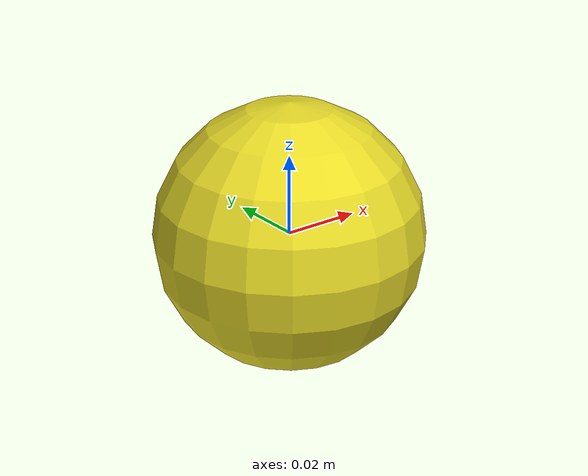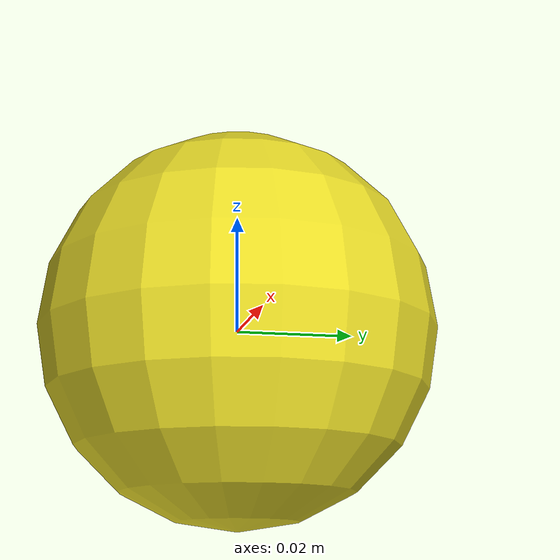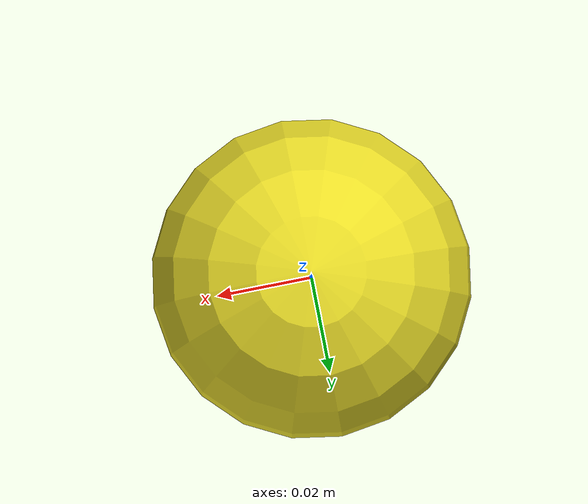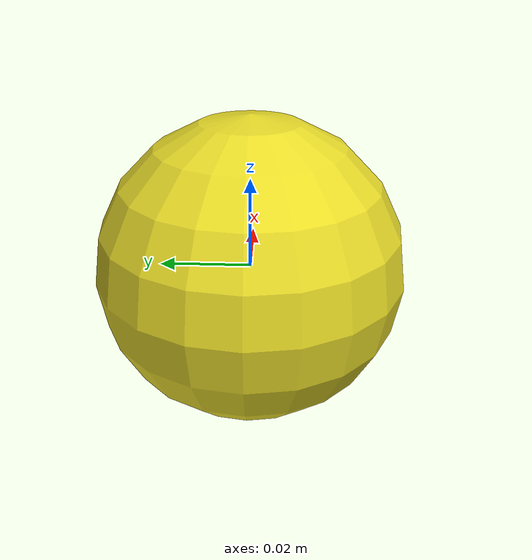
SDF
<?xml version="1.0" ?>
<sdf version="1.5">
  <model name="ampoule">
    <link name="link">
      <!--poids d'une balle de tennis FIT: 56,70 gr à 58,5 gr. -->
      <inertial>
		<mass>.058</mass>
	    <inertia>
			<!--2/3mr^2 pour une sphere creuse-->
            <ixx>0.00004339</ixx>
            <ixy>0</ixy>
            <ixz>0</ixz>
            <iyy>0.00004339</iyy>
            <iyz>0</iyz>
            <izz>0.00004339</izz>
        </inertia>
      </inertial>
	  <collision name="collision">
		<max_contacts>1</max_contacts>
        <geometry>
          <sphere>
            <radius>0.033</radius><!-- specification E2015_Rules_EU_EN_final.pdf3 -->
          </sphere>
        </geometry>
		<surface>
		  <bounce>
			<restitution_coefficient>0.728</restitution_coefficient>
			<threshold>0.01</threshold>
		  </bounce>
         <contact>
            <ode>
              <max_vel>10</max_vel>
            </ode>
          </contact>
		  <friction>
			<ode>
			  <mu>1</mu>
			  <mu2>1</mu2>
			</ode>
		  </friction>
		</surface>
      </collision>
      <visual name="visual">
        <geometry>
          <sphere>
            <radius>0.0335</radius>
          </sphere>
        </geometry>
        <material>
          <script>
            <uri>file://media/materials/scripts/gazebo.material</uri>
            <name>Gazebo/Yellow</name>
          </script>
        </material>
      </visual>
    </link>
    </model>
 </sdf>
